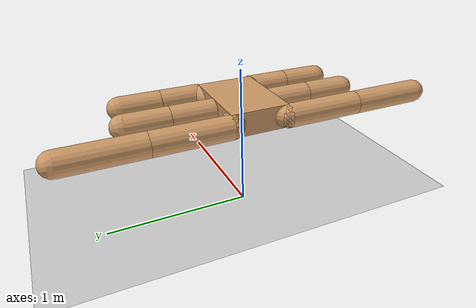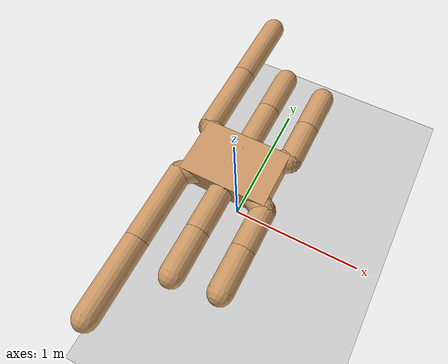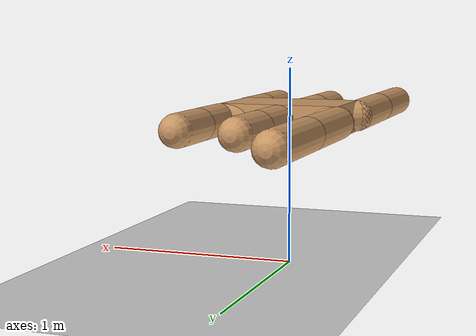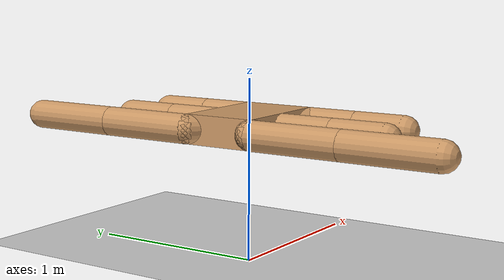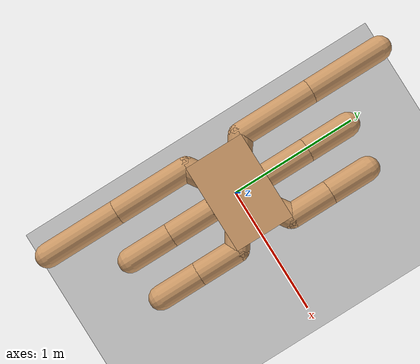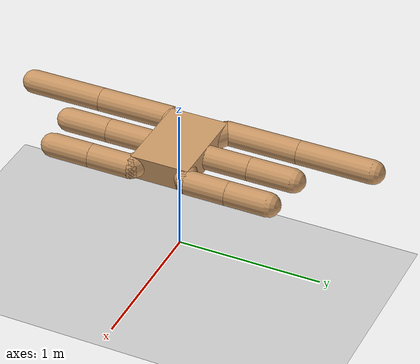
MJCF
<mujoco model="cricket2d">
  <compiler angle="degree" coordinate="local" inertiafromgeom="true"/>
  <option integrator="RK4" timestep="0.000001"/>

  <custom>
    <numeric data="0.0 0.0 0.55 1.0 0.0 0.0 0.0 0.0 1.0 0.0 -1.0 0.0 -1.0 0.0 1.0" name="init_qpos"/>
  </custom>

  <default>
    <joint armature="1" damping="1" limited="true"/>
    <geom conaffinity="0" condim="3" density="5.0" friction="1 0.5 0.5" margin="0.01" rgba="0.8 0.6 0.4 1"/>
  </default>

  <asset>
    <texture builtin="gradient" height="100" rgb1="1 1 1" rgb2="0 0 0" type="skybox" width="100"/>
    <texture builtin="flat" height="1278" mark="cross" markrgb="1 1 1" name="texgeom" random="0.01" rgb1="0.8 0.6 0.4" rgb2="0.8 0.6 0.4" type="cube" width="127"/>
    <texture builtin="checker" height="100" name="texplane" rgb1=".25 .25 .25" rgb2=".3 .3 .3" type="2d" width="100" mark="cross" markrgb=".8 .8 .8"/>
    <material name="MatPlane" reflectance="0.5" shininess="1" specular="1" texrepeat="150 150" texture="texplane"/>
    <material name="geom" texture="texgeom" texuniform="true"/>
  </asset>

  <worldbody>
    <light cutoff="100" diffuse="1 1 1" dir="-0 0 -1.3" directional="true" exponent="1" pos="0 0 1.3" specular=".1 .1 .1"/>
    <geom conaffinity="1" condim="3" material="MatPlane" name="floor" pos="0 0 0" rgba="0.8 0.8 0.8 1" size="500 500 500" type="plane"/>
    <body name="aux" pos="0 0 0.75">
      <joint axis="1 0 0" name="slide_x" pos="0 0 0" limited="false" type="slide"/>
      <joint axis="0 1 0" name="slide_y" pos="0 0 0" limited="false" type="slide"/>
      <geom name="aux_geom" size="0.08" type="sphere"/>
        <body name="torso" pos="0 0 0">
            <joint axis="0 0 -1" name="abdomen_z" pos="0 0 0" limited="false" type="hinge"/>
            <geom name="torso_geom" type="box" pos="0 0 0" size=".3 .2 .08"/>

      <body name="LF_leg" pos="0 0 0">
        <geom fromto="0.0 0.0 0.0 0.3 0.2 0.0" name="LF_aux_geom" size="0.08" type="capsule"/>
        <body name="LF_aux" pos="0.3 0.2 0">
          <joint axis="0 0 -1" name="LF_hip" pos="0.0 0.0 0.0" range="-45 110" type="hinge"/>
          <geom fromto="0.0 0.0 0.0 0.0 0.28 0.0" name="LF_femur_geom" size="0.08" type="capsule"/>
          <body pos="0.0 0.28 0.0">
            <joint axis="0 0 -1" name="LF_knee" pos="0.0 0.0 0.0" range="-180 180" type="hinge"/>
            <geom fromto="0.0 0.0 0.0 0.0 0.28 0.0" name="LF_tibia_geom" size="0.08" type="capsule"/>
          </body>
        </body>
      </body>

      <body name="RF_leg" pos="0 0 0">
        <geom fromto="0.0 0.0 0.0 0.3 -0.2 0.0" name="RF_aux_geom" size="0.08" type="capsule"/>
        <body name="RF_aux" pos="0.3 -0.2 0">
          <joint axis="0 0 -1" name="RF_hip" pos="0.0 0.0 0.0" range="-110 45" type="hinge"/>
          <geom fromto="0.0 0.0 0.0 0.0 -0.28 0.0" name="RF_femur_geom" size="0.08" type="capsule"/>
          <body pos="0.0 -0.28 0.0">
            <joint axis="0 0 -1" name="RF_knee" pos="0.0 0.0 0.0" range="-180 180" type="hinge"/>
            <geom fromto="0.0 0.0 0.0 0.0 -0.28 0.0" name="RF_tibia_geom" size="0.08" type="capsule"/>
          </body>
        </body>
      </body>

      <body name="LM_leg" pos="0 0 0">
        <geom fromto="0.0 0.0 0.0 0.0 0.2 0.0" name="LM_aux_geom" size="0.08" type="capsule"/>
        <body name="LM_aux" pos="0.0 0.2 0">
          <joint axis="0 0 -1" name="LM_hip" pos="0.0 0.0 0.0" range="-65 55" type="hinge"/>
          <geom fromto="0.0 0.0 0.0 0.0 0.3 0.0" name="LM_femur_geom" size="0.08" type="capsule"/>
          <body pos="0.0 0.3 0.0">
            <joint axis="0 0 -1" name="LM_knee" pos="0.0 0.0 0.0" range="-180 180" type="hinge"/>
            <geom fromto="0.0 0.0 0.0 0.0 0.3 0.0" name="LM_tibia_geom" size="0.08" type="capsule"/>
          </body>
        </body>
      </body>

      <body name="RM_leg" pos="0 0 0">
        <geom fromto="0.0 0.0 0.0 0.0 -0.2 0.0" name="RM_aux_geom" size="0.08" type="capsule"/>
        <body name="RM_aux" pos="0.0 -0.2 0">
          <joint axis="0 0 -1" name="RM_hip" pos="0.0 0.0 0.0" range="-55 65" type="hinge"/>
          <geom fromto="0.0 0.0 0.0 0.0 -0.3 0.0" name="RM_femur_geom" size="0.08" type="capsule"/>
          <body pos="0.0 -0.3 0.0">
            <joint axis="0 0 -1" name="RM_knee" pos="0.0 0.0 0.0" range="-180 180" type="hinge"/>
            <geom fromto="0.0 0.0 0.0 0.0 -0.3 0.0" name="RM_tibia_geom" size="0.08" type="capsule"/>
          </body>
        </body>
      </body>

      <body name="LH_leg" pos="0 0 0">
        <geom fromto="0.0 0.0 0.0 -0.3 0.2 0.0" name="LH_aux_geom" size="0.08" type="capsule"/>
        <body name="LH_aux" pos="-0.3 0.2 0">
          <joint axis="0 0 -1" name="LH_hip" pos="0.0 0.0 0.0" range="-115 15" type="hinge"/>
          <geom fromto="0.0 0.0 0.0 0.0 0.51 0" name="LH_femur_geom" size="0.08" type="capsule"/>
          <body pos="0.0 0.51 0">
            <joint axis="0 0 -1" name="LH_knee" pos="0.0 0.0 0.0" range="-180 0" type="hinge"/>
            <geom fromto="0.0 0.0 0.0 0.0 0.51 0" name="LH_tibia_geom" size="0.08" type="capsule"/>
          </body>
        </body>
      </body>

      <body name="RH_leg" pos="0 0 0">
        <geom fromto="0.0 0.0 0.0 -0.3 -0.2 0.0" name="RH_aux_geom" size="0.08" type="capsule"/>
        <body name="RH_aux" pos="-0.3 -0.2 0">
          <joint axis="0 0 -1" name="RH_hip" pos="0.0 0.0 0.0" range="-15 115" type="hinge"/>
          <geom fromto="0.0 0.0 0.0 0.0 -0.51 0" name="RH_femur_geom" size="0.08" type="capsule"/>
          <body pos="0.0 -0.51 0">
            <joint axis="0 0 -1" name="RH_knee" pos="0.0 0.0 0.0" range="0 180" type="hinge"/>
            <geom fromto="0.0 0.0 0.0 0.0 -0.51 0" name="RH_tibia_geom" size="0.08" type="capsule"/>
          </body>
        </body>
      </body>

        </body>
    </body>
    <camera name="track" mode="trackcom" target="aux" pos="0 0 30" xyaxes="1 0 0 0 1 0"/>
    <camera name="fix" mode="fixed" pos="0 -7 15" xyaxes="1 0 0 0 2 1"/>
  </worldbody>

  <actuator>
    <motor ctrllimited="true" ctrlrange="-1.0 1.0" joint="LF_hip" gear="150"/>
    <motor ctrllimited="true" ctrlrange="-1.0 1.0" joint="LM_hip" gear="150"/>
    <motor ctrllimited="true" ctrlrange="-1.0 1.0" joint="LH_hip" gear="150"/>
    <motor ctrllimited="true" ctrlrange="-1.0 1.0" joint="RF_hip" gear="150"/>
    <motor ctrllimited="true" ctrlrange="-1.0 1.0" joint="RM_hip" gear="150"/>
    <motor ctrllimited="true" ctrlrange="-1.0 1.0" joint="RH_hip" gear="150"/>
    <motor ctrllimited="true" ctrlrange="-1.0 1.0" joint="LF_knee" gear="150"/>
    <motor ctrllimited="true" ctrlrange="-1.0 1.0" joint="LM_knee" gear="150"/>
    <motor ctrllimited="true" ctrlrange="-1.0 1.0" joint="LH_knee" gear="150"/>
    <motor ctrllimited="true" ctrlrange="-1.0 1.0" joint="RF_knee" gear="150"/>
    <motor ctrllimited="true" ctrlrange="-1.0 1.0" joint="RM_knee" gear="150"/>
    <motor ctrllimited="true" ctrlrange="-1.0 1.0" joint="RH_knee" gear="150"/>
    <position ctrllimited="false" joint="slide_x" gear="1" kp="70000"/>
    <position ctrllimited="false" joint="slide_y" gear="1" kp="70000"/>
    <position ctrllimited="false" joint="abdomen_z" gear="1" kp="70000"/>
    </actuator>
</mujoco>
